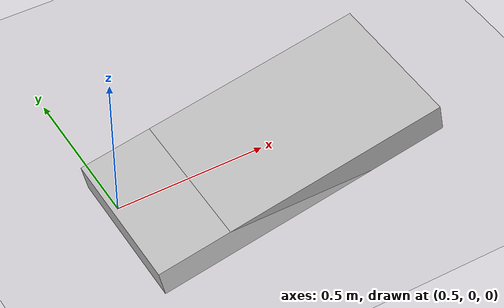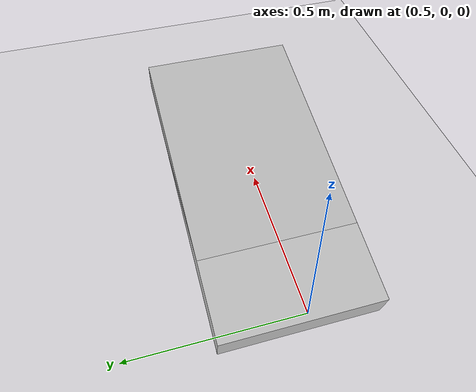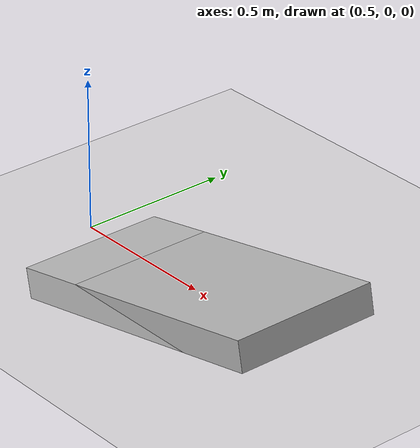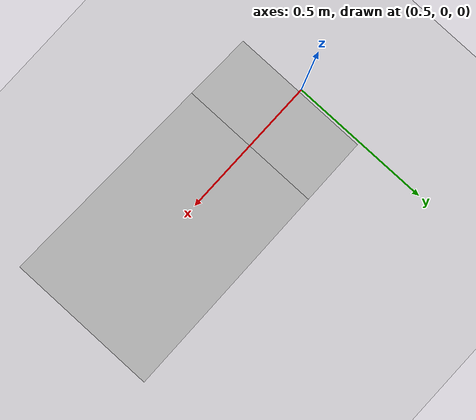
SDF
<?xml version="1.0" ?>
<sdf version="1.4">
  <!-- We use a custom world for the robotis mannipulatorH so that the camera angle is launched correctly -->

  <world name="default">
    <include>
      <uri>model://ground_plane</uri>
    </include>

    <!-- Global light source -->
    <include>
      <uri>model://sun</uri>
    </include>

    <model name="box">
      <static>true</static>

      <pose>1.0 0 0.0 0 -0.2 0</pose>
      <link name="link">
        <collision name="collision">
          <geometry>
            <box>
              <size>1 0.5 .1</size>
            </box>
          </geometry>
        </collision>
        <visual name="visual">
          <geometry>
            <box>
              <size>1 0.5 .1</size>
            </box>
          </geometry>
        </visual>
      </link>
    </model>

    <!-- Focus camera on tall pendulum -->
    <gui fullscreen='0'>
      <camera name='user_camera'>
	<pose> 2.0 -2.0 1.2 0.0 0.275643 2.356190 </pose>
	<view_controller>orbit</view_controller>
      </camera>
    </gui>
	<!-- Slope in front of Robot -->

	<!-- Stairs in front of Robot -->

	<!-- Wall in front of Robot -->
  </world>
</sdf>
